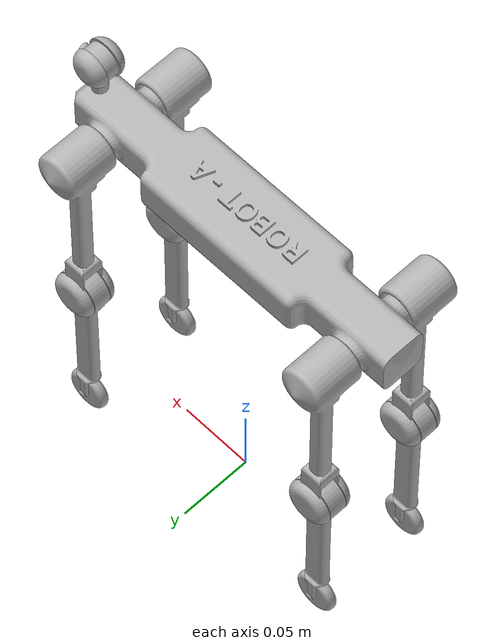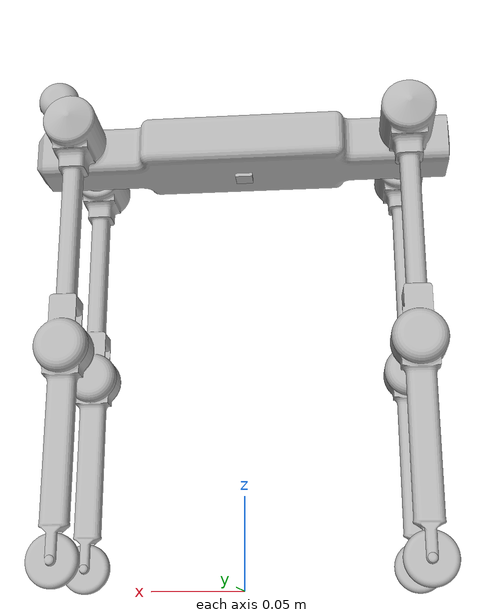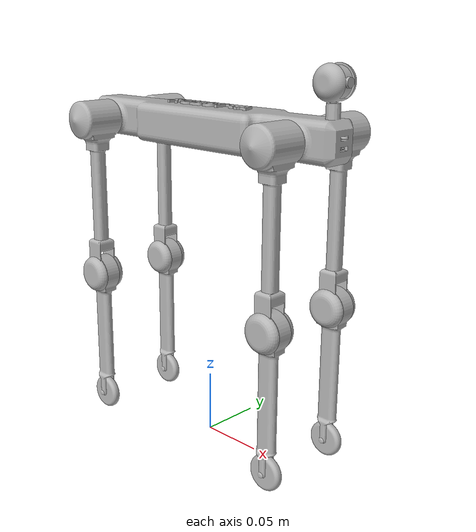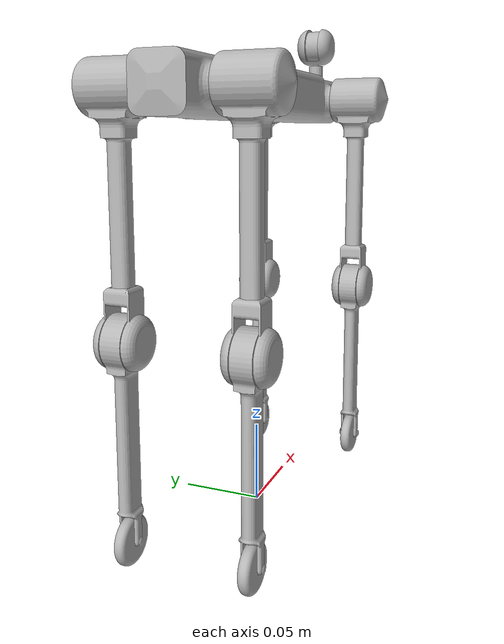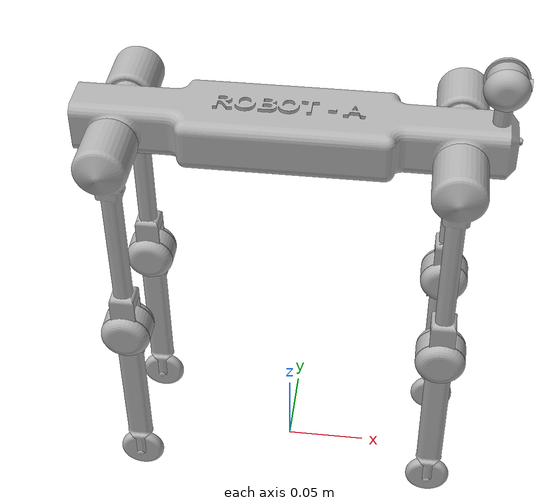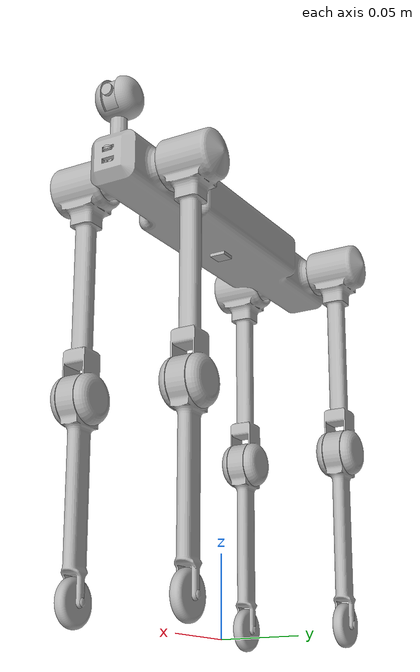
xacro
<?xml version="1.0" ?>
<robot name="robot_a" xmlns:xacro="http://www.ros.org/wiki/xacro">

<xacro:include filename="$(find robot_a_description)/urdf/materials.xacro" />
<xacro:include filename="$(find robot_a_description)/urdf/robot_a.trans" />
<xacro:include filename="$(find robot_a_description)/urdf/robot_a.gazebo" />

<!-- ############################# robot a description ######################################## -->

<link name="base_link">
  <inertial>
    <origin rpy="0 0 0" xyz="0.0008980217839207913 1.1782410365004276e-07 0.2560702317340127"/>
    <mass value="2.55500074689935"/>
    <inertia ixx="0.000859" ixy="0.0" ixz="-8e-06" iyy="0.012034" iyz="-0.0" izz="0.012551"/>
  </inertial>
  <visual>
    <origin rpy="0 0 0" xyz="0 0 0"/>
    <geometry>
      <mesh filename="package://robot_a_description/meshes/base_link.stl" scale="0.001 0.001 0.001"/>
    </geometry>
    <material name="silver"/>
  </visual>
  <collision>
    <origin rpy="0 0 0" xyz="0 0 0"/>
    <geometry>
      <mesh filename="package://robot_a_description/meshes/base_link.stl" scale="0.001 0.001 0.001"/>
    </geometry>
  </collision>
</link>

<link name="lidar_1">
  <inertial>
    <origin rpy="0 0 0" xyz="-1.2446987884828786e-13 1.2776243736777814e-18 0.000750003844499525"/>
    <mass value="0.00021317031150898044"/>
    <inertia ixx="0.0" ixy="-0.0" ixz="-0.0" iyy="0.0" iyz="0.0" izz="0.0"/>
  </inertial>
  <visual>
    <origin rpy="0 0 0" xyz="-0.125 -0.0 -0.259"/>
    <geometry>
      <mesh filename="package://robot_a_description/meshes/lidar_1.stl" scale="0.001 0.001 0.001"/>
    </geometry>
    <material name="silver"/>
  </visual>
  <collision>
    <origin rpy="0 0 0" xyz="-0.125 -0.0 -0.259"/>
    <geometry>
      <mesh filename="package://robot_a_description/meshes/lidar_1.stl" scale="0.001 0.001 0.001"/>
    </geometry>
  </collision>
</link>

<link name="ultra_1">
  <inertial>
    <origin rpy="0 0 0" xyz="0.0007277757538497465 -3.416636234475276e-05 -1.1387165313736514e-05"/>
    <mass value="9.14889715749572e-05"/>
    <inertia ixx="0.0" ixy="0.0" ixz="0.0" iyy="0.0" iyz="-0.0" izz="0.0"/>
  </inertial>
  <visual>
    <origin rpy="0 0 0" xyz="-0.122 -0.0 -0.2525"/>
    <geometry>
      <mesh filename="package://robot_a_description/meshes/ultra_1.stl" scale="0.001 0.001 0.001"/>
    </geometry>
    <material name="silver"/>
  </visual>
  <collision>
    <origin rpy="0 0 0" xyz="-0.122 -0.0 -0.2525"/>
    <geometry>
      <mesh filename="package://robot_a_description/meshes/ultra_1.stl" scale="0.001 0.001 0.001"/>
    </geometry>
  </collision>
</link>

<link name="imu_1">
  <inertial>
    <origin rpy="0 0 0" xyz="0.0 0.0 -0.0009999999999999454"/>
    <mass value="0.001569999999999994"/>
    <inertia ixx="0.0" ixy="0.0" ixz="-0.0" iyy="0.0" iyz="0.0" izz="0.0"/>
  </inertial>
  <visual>
    <origin rpy="0 0 0" xyz="-0.0 -0.0 -0.241"/>
    <geometry>
      <mesh filename="package://robot_a_description/meshes/imu_1.stl" scale="0.001 0.001 0.001"/>
    </geometry>
    <material name="silver"/>
  </visual>
  <collision>
    <origin rpy="0 0 0" xyz="-0.0 -0.0 -0.241"/>
    <geometry>
      <mesh filename="package://robot_a_description/meshes/imu_1.stl" scale="0.001 0.001 0.001"/>
    </geometry>
  </collision>
</link>

<link name="cam_x_1">
  <inertial>
    <origin rpy="0 0 0" xyz="1.7135448060479064e-09 -3.357271463576339e-05 0.02238692590432878"/>
    <mass value="0.04166345350600981"/>
    <inertia ixx="5e-06" ixy="0.0" ixz="0.0" iyy="4e-06" iyz="0.0" izz="4e-06"/>
  </inertial>
  <visual>
    <origin rpy="0 0 0" xyz="-0.115 -0.0 -0.271"/>
    <geometry>
      <mesh filename="package://robot_a_description/meshes/cam_x_1.stl" scale="0.001 0.001 0.001"/>
    </geometry>
    <material name="silver"/>
  </visual>
  <collision>
    <origin rpy="0 0 0" xyz="-0.115 -0.0 -0.271"/>
    <geometry>
      <mesh filename="package://robot_a_description/meshes/cam_x_1.stl" scale="0.001 0.001 0.001"/>
    </geometry>
  </collision>
</link>

<link name="cam_y_1">
  <inertial>
    <origin rpy="0 0 0" xyz="1.5562071711550107e-05 0.008784132944455373 1.9255622624170243e-06"/>
    <mass value="0.032117634951053735"/>
    <inertia ixx="1e-06" ixy="0.0" ixz="-0.0" iyy="2e-06" iyz="0.0" izz="1e-06"/>
  </inertial>
  <visual>
    <origin rpy="0 0 0" xyz="-0.115 0.008715 -0.29471"/>
    <geometry>
      <mesh filename="package://robot_a_description/meshes/cam_y_1.stl" scale="0.001 0.001 0.001"/>
    </geometry>
    <material name="silver"/>
  </visual>
  <collision>
    <origin rpy="0 0 0" xyz="-0.115 0.008715 -0.29471"/>
    <geometry>
      <mesh filename="package://robot_a_description/meshes/cam_y_1.stl" scale="0.001 0.001 0.001"/>
    </geometry>
  </collision>
</link>

<link name="camera_1">
  <inertial>
    <origin rpy="0 0 0" xyz="0.001000001713633486 -3.659817907939551e-07 -1.643931226147366e-07"/>
    <mass value="0.0006042068071016798"/>
    <inertia ixx="0.0" ixy="0.0" ixz="-0.0" iyy="0.0" iyz="0.0" izz="0.0"/>
  </inertial>
  <visual>
    <origin rpy="0 0 0" xyz="-0.126 0.000133 -0.295206"/>
    <geometry>
      <mesh filename="package://robot_a_description/meshes/camera_1.stl" scale="0.001 0.001 0.001"/>
    </geometry>
    <material name="silver"/>
  </visual>
  <collision>
    <origin rpy="0 0 0" xyz="-0.126 0.000133 -0.295206"/>
    <geometry>
      <mesh filename="package://robot_a_description/meshes/camera_1.stl" scale="0.001 0.001 0.001"/>
    </geometry>
  </collision>
</link>

<link name="right_u_f_l_1">
  <inertial>
    <origin rpy="0 0 0" xyz="-1.5882252511756345e-07 0.013091811997092924 -0.04747198563412541"/>
    <mass value="0.27621366331203023"/>
    <inertia ixx="0.000781" ixy="0.0" ixz="-0.0" iyy="0.000775" iyz="1.7e-05" izz="3.1e-05"/>
  </inertial>
  <visual>
    <origin rpy="0 0 0" xyz="-0.095 0.0502 -0.256"/>
    <geometry>
      <mesh filename="package://robot_a_description/meshes/right_u_f_l_1.stl" scale="0.001 0.001 0.001"/>
    </geometry>
    <material name="silver"/>
  </visual>
  <collision>
    <origin rpy="0 0 0" xyz="-0.095 0.0502 -0.256"/>
    <geometry>
      <mesh filename="package://robot_a_description/meshes/right_u_f_l_1.stl" scale="0.001 0.001 0.001"/>
    </geometry>
  </collision>
</link>

<link name="right_u_b_l_1">
  <inertial>
    <origin rpy="0 0 0" xyz="-1.5882252497878557e-07 0.013091811997093063 -0.04747198563412544"/>
    <mass value="0.27621366331203023"/>
    <inertia ixx="0.000781" ixy="0.0" ixz="-0.0" iyy="0.000775" iyz="1.7e-05" izz="3.1e-05"/>
  </inertial>
  <visual>
    <origin rpy="0 0 0" xyz="0.095 0.0502 -0.256"/>
    <geometry>
      <mesh filename="package://robot_a_description/meshes/right_u_b_l_1.stl" scale="0.001 0.001 0.001"/>
    </geometry>
    <material name="silver"/>
  </visual>
  <collision>
    <origin rpy="0 0 0" xyz="0.095 0.0502 -0.256"/>
    <geometry>
      <mesh filename="package://robot_a_description/meshes/right_u_b_l_1.stl" scale="0.001 0.001 0.001"/>
    </geometry>
  </collision>
</link>

<link name="left_u_f_l_1">
  <inertial>
    <origin rpy="0 0 0" xyz="1.965800418973762e-07 -0.013091790282522324 -0.047472014364291826"/>
    <mass value="0.27621355718927365"/>
    <inertia ixx="0.000781" ixy="0.0" ixz="0.0" iyy="0.000775" iyz="-1.7e-05" izz="3.1e-05"/>
  </inertial>
  <visual>
    <origin rpy="0 0 0" xyz="-0.095 -0.0502 -0.256"/>
    <geometry>
      <mesh filename="package://robot_a_description/meshes/left_u_f_l_1.stl" scale="0.001 0.001 0.001"/>
    </geometry>
    <material name="silver"/>
  </visual>
  <collision>
    <origin rpy="0 0 0" xyz="-0.095 -0.0502 -0.256"/>
    <geometry>
      <mesh filename="package://robot_a_description/meshes/left_u_f_l_1.stl" scale="0.001 0.001 0.001"/>
    </geometry>
  </collision>
</link>

<link name="left_u_b_l_1">
  <inertial>
    <origin rpy="0 0 0" xyz="1.9658004186962064e-07 -0.013091789762305336 -0.04747201436429249"/>
    <mass value="0.27621355718926793"/>
    <inertia ixx="0.000781" ixy="0.0" ixz="0.0" iyy="0.000775" iyz="-1.7e-05" izz="3.1e-05"/>
  </inertial>
  <visual>
    <origin rpy="0 0 0" xyz="0.095 -0.0502 -0.256"/>
    <geometry>
      <mesh filename="package://robot_a_description/meshes/left_u_b_l_1.stl" scale="0.001 0.001 0.001"/>
    </geometry>
    <material name="silver"/>
  </visual>
  <collision>
    <origin rpy="0 0 0" xyz="0.095 -0.0502 -0.256"/>
    <geometry>
      <mesh filename="package://robot_a_description/meshes/left_u_b_l_1.stl" scale="0.001 0.001 0.001"/>
    </geometry>
  </collision>
</link>

<link name="right_d_f_l_1">
  <inertial>
    <origin rpy="0 0 0" xyz="-1.8014021880702336e-06 0.009528347483183236 -0.02978624691835219"/>
    <mass value="0.15035033329870254"/>
    <inertia ixx="0.000177" ixy="-0.0" ixz="-0.0" iyy="0.00018" iyz="0.0" izz="7e-06"/>
  </inertial>
  <visual>
    <origin rpy="0 0 0" xyz="-0.095 0.045454 -0.126"/>
    <geometry>
      <mesh filename="package://robot_a_description/meshes/right_d_f_l_1.stl" scale="0.001 0.001 0.001"/>
    </geometry>
    <material name="silver"/>
  </visual>
  <collision>
    <origin rpy="0 0 0" xyz="-0.095 0.045454 -0.126"/>
    <geometry>
      <mesh filename="package://robot_a_description/meshes/right_d_f_l_1.stl" scale="0.001 0.001 0.001"/>
    </geometry>
  </collision>
</link>

<link name="right_d_b_l_1">
  <inertial>
    <origin rpy="0 0 0" xyz="-1.801416739388717e-06 0.009528347483183153 -0.02978624691835556"/>
    <mass value="0.15035033329870937"/>
    <inertia ixx="0.000177" ixy="-0.0" ixz="-0.0" iyy="0.00018" iyz="0.0" izz="7e-06"/>
  </inertial>
  <visual>
    <origin rpy="0 0 0" xyz="0.095 0.045454 -0.126"/>
    <geometry>
      <mesh filename="package://robot_a_description/meshes/right_d_b_l_1.stl" scale="0.001 0.001 0.001"/>
    </geometry>
    <material name="silver"/>
  </visual>
  <collision>
    <origin rpy="0 0 0" xyz="0.095 0.045454 -0.126"/>
    <geometry>
      <mesh filename="package://robot_a_description/meshes/right_d_b_l_1.stl" scale="0.001 0.001 0.001"/>
    </geometry>
  </collision>
</link>

<link name="left_d_f_l_1">
  <inertial>
    <origin rpy="0 0 0" xyz="1.7865514082698875e-06 -0.009528342333501014 -0.02978625888189604"/>
    <mass value="0.1503499444400148"/>
    <inertia ixx="0.000177" ixy="-0.0" ixz="0.0" iyy="0.00018" iyz="-0.0" izz="7e-06"/>
  </inertial>
  <visual>
    <origin rpy="0 0 0" xyz="-0.095 -0.045454 -0.126"/>
    <geometry>
      <mesh filename="package://robot_a_description/meshes/left_d_f_l_1.stl" scale="0.001 0.001 0.001"/>
    </geometry>
    <material name="silver"/>
  </visual>
  <collision>
    <origin rpy="0 0 0" xyz="-0.095 -0.045454 -0.126"/>
    <geometry>
      <mesh filename="package://robot_a_description/meshes/left_d_f_l_1.stl" scale="0.001 0.001 0.001"/>
    </geometry>
  </collision>
</link>

<link name="left_d_b_l_1">
  <inertial>
    <origin rpy="0 0 0" xyz="1.7865368564379258e-06 -0.009528342333501028 -0.029786258881896482"/>
    <mass value="0.1503499444400155"/>
    <inertia ixx="0.000177" ixy="-0.0" ixz="0.0" iyy="0.00018" iyz="-0.0" izz="7e-06"/>
  </inertial>
  <visual>
    <origin rpy="0 0 0" xyz="0.095 -0.045454 -0.126"/>
    <geometry>
      <mesh filename="package://robot_a_description/meshes/left_d_b_l_1.stl" scale="0.001 0.001 0.001"/>
    </geometry>
    <material name="silver"/>
  </visual>
  <collision>
    <origin rpy="0 0 0" xyz="0.095 -0.045454 -0.126"/>
    <geometry>
      <mesh filename="package://robot_a_description/meshes/left_d_b_l_1.stl" scale="0.001 0.001 0.001"/>
    </geometry>
  </collision>
</link>

<link name="right_f_w_1">
  <inertial>
    <origin rpy="0 0 0" xyz="1.3709066937206416e-09 0.004049998956918724 -3.5762786343429553e-09"/>
    <mass value="0.031722999592798416"/>
    <inertia ixx="2e-06" ixy="-0.0" ixz="-0.0" iyy="3e-06" iyz="0.0" izz="2e-06"/>
  </inertial>
  <visual>
    <origin rpy="0 0 0" xyz="-0.095 0.03995 -0.014"/>
    <geometry>
      <mesh filename="package://robot_a_description/meshes/right_f_w_1.stl" scale="0.001 0.001 0.001"/>
    </geometry>
    <material name="silver"/>
  </visual>
  <collision>
    <origin rpy="0 0 0" xyz="-0.095 0.03995 -0.014"/>
    <geometry>
      <mesh filename="package://robot_a_description/meshes/right_f_w_1.stl" scale="0.001 0.001 0.001"/>
    </geometry>
  </collision>
</link>

<link name="right_b_w_1">
  <inertial>
    <origin rpy="0 0 0" xyz="1.3709066937206416e-09 0.004049998956918724 -3.5762786343429553e-09"/>
    <mass value="0.031722999592798416"/>
    <inertia ixx="2e-06" ixy="-0.0" ixz="0.0" iyy="3e-06" iyz="0.0" izz="2e-06"/>
  </inertial>
  <visual>
    <origin rpy="0 0 0" xyz="0.095 0.03995 -0.014"/>
    <geometry>
      <mesh filename="package://robot_a_description/meshes/right_b_w_1.stl" scale="0.001 0.001 0.001"/>
    </geometry>
    <material name="silver"/>
  </visual>
  <collision>
    <origin rpy="0 0 0" xyz="0.095 0.03995 -0.014"/>
    <geometry>
      <mesh filename="package://robot_a_description/meshes/right_b_w_1.stl" scale="0.001 0.001 0.001"/>
    </geometry>
  </collision>
</link>

<link name="left_f_w_1">
  <inertial>
    <origin rpy="0 0 0" xyz="-1.3709070684209124e-09 -0.004149998956918699 -3.5762786239346145e-09"/>
    <mass value="0.031722999592798375"/>
    <inertia ixx="2e-06" ixy="0.0" ixz="0.0" iyy="3e-06" iyz="0.0" izz="2e-06"/>
  </inertial>
  <visual>
    <origin rpy="0 0 0" xyz="-0.095 -0.04005 -0.014"/>
    <geometry>
      <mesh filename="package://robot_a_description/meshes/left_f_w_1.stl" scale="0.001 0.001 0.001"/>
    </geometry>
    <material name="silver"/>
  </visual>
  <collision>
    <origin rpy="0 0 0" xyz="-0.095 -0.04005 -0.014"/>
    <geometry>
      <mesh filename="package://robot_a_description/meshes/left_f_w_1.stl" scale="0.001 0.001 0.001"/>
    </geometry>
  </collision>
</link>

<link name="left_b_w_1">
  <inertial>
    <origin rpy="0 0 0" xyz="-1.3709070684209124e-09 -0.004149998956918699 -3.5762786239346145e-09"/>
    <mass value="0.031722999592798375"/>
    <inertia ixx="2e-06" ixy="-0.0" ixz="0.0" iyy="3e-06" iyz="0.0" izz="2e-06"/>
  </inertial>
  <visual>
    <origin rpy="0 0 0" xyz="0.095 -0.04005 -0.014"/>
    <geometry>
      <mesh filename="package://robot_a_description/meshes/left_b_w_1.stl" scale="0.001 0.001 0.001"/>
    </geometry>
    <material name="silver"/>
  </visual>
  <collision>
    <origin rpy="0 0 0" xyz="0.095 -0.04005 -0.014"/>
    <geometry>
      <mesh filename="package://robot_a_description/meshes/left_b_w_1.stl" scale="0.001 0.001 0.001"/>
    </geometry>
  </collision>
</link>

<!-- ################## robot a joints ############################################## -->

<!-- ########################## sensors jounts ################ -->

<joint name="lidar_j" type="fixed">
  <origin rpy="0 0 0" xyz="0.125 0.0 0.259"/>
  <parent link="base_link"/>
  <child link="lidar_1"/>
</joint>

<joint name="ultra_j" type="fixed">
  <origin rpy="0 0 0" xyz="0.122 0.0 0.2525"/>
  <parent link="base_link"/>
  <child link="ultra_1"/>
</joint>

<joint name="imu_j" type="fixed">
  <origin rpy="0 0 0" xyz="0.0 0.0 0.241"/>
  <parent link="base_link"/>
  <child link="imu_1"/>
</joint>

<!-- ########################## sensors jounts ################ -->

<joint name="cam_x_j" type="continuous">
  <origin rpy="0 0 0" xyz="0.115 0.0 0.271"/>
  <parent link="base_link"/>
  <child link="cam_x_1"/>
  <axis xyz="0.0 0.0 1.0"/>
</joint>

<joint name="cam_y_j" type="revolute">
  <origin rpy="0 0 0" xyz="0.0 -0.008715 0.02371"/>
  <parent link="cam_x_1"/>
  <child link="cam_y_1"/>
  <axis xyz="0.0 1.0 0.0"/>
  <limit effort="100" lower="-1.047198" upper="1.047198" velocity="100"/>
</joint>

<joint name="camera_j" type="fixed">
  <origin rpy="0 0 0" xyz="0.011 0.008582 0.000496"/>
  <parent link="cam_y_1"/>
  <child link="camera_1"/>
</joint>

<!-- ########################## right frount leg joints ################ -->

<joint name="RF1_joint" type="revolute">
  <origin rpy="0 0 0" xyz="0.095 -0.0502 0.256"/>
  <parent link="base_link"/>
  <child link="right_u_f_l_1"/>
  <axis xyz="0.0 -1.0 0.0"/>
  <limit effort="100" lower="-1.308997" upper="1.308997" velocity="100"/>
</joint>

<joint name="RF2_joint" type="revolute">
  <origin rpy="0 0 0" xyz="0.0 0.004746 -0.13"/>
  <parent link="right_u_f_l_1"/>
  <child link="right_d_f_l_1"/>
  <axis xyz="0.0 1.0 0.0"/>
  <limit effort="100" lower="-1.308997" upper="1.308997" velocity="100"/>
</joint>

<joint name="RFW_joint" type="continuous">
  <origin rpy="0 0 0" xyz="0.0 0.005504 -0.112"/>
  <parent link="right_d_f_l_1"/>
  <child link="right_f_w_1"/>
  <axis xyz="0.0 -1.0 0.0"/>
</joint>

<!-- ########################## right back leg joints ################ -->

<joint name="RB1_joint" type="revolute">
  <origin rpy="0 0 0" xyz="-0.095 -0.0502 0.256"/>
  <parent link="base_link"/>
  <child link="right_u_b_l_1"/>
  <axis xyz="0.0 -1.0 0.0"/>
  <limit effort="100" lower="-1.308997" upper="1.308997" velocity="100"/>
</joint>

<joint name="RB2_joint" type="revolute">
  <origin rpy="0 0 0" xyz="0.0 0.004746 -0.13"/>
  <parent link="right_u_b_l_1"/>
  <child link="right_d_b_l_1"/>
  <axis xyz="0.0 1.0 0.0"/>
  <limit effort="100" lower="-1.308997" upper="1.308997" velocity="100"/>
</joint>

<joint name="RBW_joint" type="continuous">
  <origin rpy="0 0 0" xyz="0.0 0.005504 -0.112"/>
  <parent link="right_d_b_l_1"/>
  <child link="right_b_w_1"/>
  <axis xyz="0.0 -1.0 0.0"/>
</joint>

<!-- ########################## left frount leg joints ################ -->

<joint name="LF1_joint" type="revolute">
  <origin rpy="0 0 0" xyz="0.095 0.0502 0.256"/>
  <parent link="base_link"/>
  <child link="left_u_f_l_1"/>
  <axis xyz="0.0 1.0 0.0"/>
  <limit effort="100" lower="-1.308997" upper="1.308997" velocity="100"/>
</joint>

<joint name="LF2_joint" type="revolute">
  <origin rpy="0 0 0" xyz="0.0 -0.004746 -0.13"/>
  <parent link="left_u_f_l_1"/>
  <child link="left_d_f_l_1"/>
  <axis xyz="-0.0 -1.0 0.0"/>
  <limit effort="100" lower="-1.308997" upper="1.308997" velocity="100"/>
</joint>

<joint name="LFW_joint" type="continuous">
  <origin rpy="0 0 0" xyz="0.0 -0.005404 -0.112"/>
  <parent link="left_d_f_l_1"/>
  <child link="left_f_w_1"/>
  <axis xyz="0.0 1.0 0.0"/>
</joint>

<!-- ########################## left back leg joints ################ -->

<joint name="LB1_joint" type="revolute">
  <origin rpy="0 0 0" xyz="-0.095 0.0502 0.256"/>
  <parent link="base_link"/>
  <child link="left_u_b_l_1"/>
  <axis xyz="0.0 1.0 0.0"/>
  <limit effort="100" lower="-1.308997" upper="1.308997" velocity="100"/>
</joint>

<joint name="LB2_joint" type="revolute">
  <origin rpy="0 0 0" xyz="0.0 -0.004746 -0.13"/>
  <parent link="left_u_b_l_1"/>
  <child link="left_d_b_l_1"/>
  <axis xyz="-0.0 -1.0 0.0"/>
  <limit effort="100" lower="-1.308997" upper="1.308997" velocity="100"/>
</joint>

<joint name="LBW_joint" type="continuous">
  <origin rpy="0 0 0" xyz="0.0 -0.005404 -0.112"/>
  <parent link="left_d_b_l_1"/>
  <child link="left_b_w_1"/>
  <axis xyz="0.0 1.0 0.0"/>
</joint>

</robot>

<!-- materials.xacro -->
<robot name="robot_a" xmlns:xacro="http://www.ros.org/wiki/xacro" >

<material name="silver">
  <color rgba="0.700 0.700 0.700 1.000"/>
</material>

</robot>
